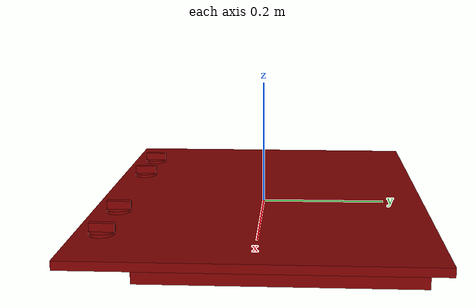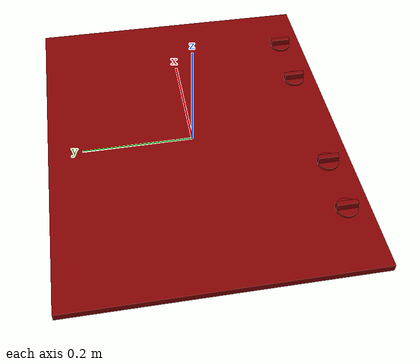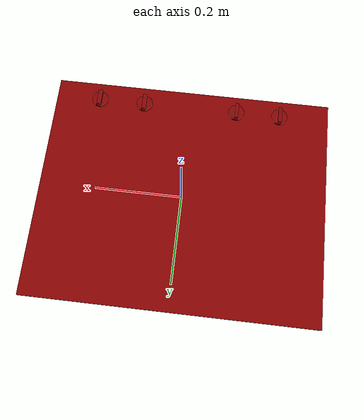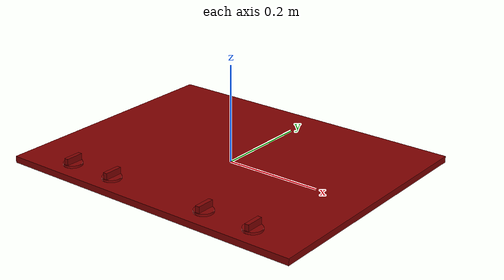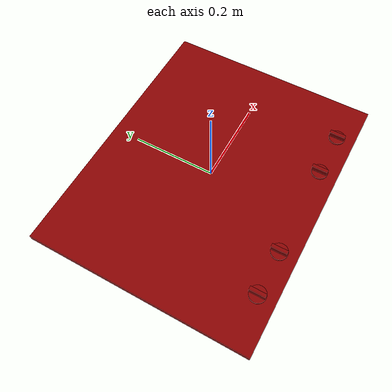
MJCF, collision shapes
<?xml version='1.0' encoding='UTF-8'?>
<mujoco model="model">
  <compiler angle="radian"/>
  <asset>
    <mesh file="visuals/knob_front_left.obj" name="knob_front_left_vis"/>
    <mesh file="visuals/knob_front_right.obj" name="knob_front_right_vis"/>
    <mesh file="visuals/knob_rear_left.obj" name="knob_rear_left_vis"/>
    <mesh file="visuals/knob_rear_right.obj" name="knob_rear_right_vis"/>
    <mesh file="visuals/Body001.obj" name="Body001_vis"/>
    <texture file="visuals/T_BC001.png" name="Body001_material" type="2d"/>
    <material name="Body001_material" rgba="1 1 1 1.0" texture="Body001_material" shininess="0.141421377658844" specular="0.3103448502657381"/>
    <texture file="visuals/T_BC001.png" name="knob_front_left_material" type="2d"/>
    <material name="knob_front_left_material" rgba="1 1 1 1.0" texture="knob_front_left_material" shininess="0.141421377658844" specular="0.3103448502657381"/>
    <texture file="visuals/T_BC001.png" name="knob_front_right_material" type="2d"/>
    <material name="knob_front_right_material" rgba="1 1 1 1.0" texture="knob_front_right_material" shininess="0.141421377658844" specular="0.3103448502657381"/>
    <texture file="visuals/T_BC001.png" name="knob_rear_left_material" type="2d"/>
    <material name="knob_rear_left_material" rgba="1 1 1 1.0" texture="knob_rear_left_material" shininess="0.141421377658844" specular="0.3103448502657381"/>
    <texture file="visuals/T_BC001.png" name="knob_rear_right_material" type="2d"/>
    <material name="knob_rear_right_material" rgba="1 1 1 1.0" texture="knob_rear_right_material" shininess="0.141421377658844" specular="0.3103448502657381"/>
  </asset>
  <default>
    <default class="visual">
      <geom conaffinity="0" contype="0" group="1" type="mesh"/>
    </default>
    <default class="collision">
      <geom group="0" rgba="0.5 0 0 0.5"/>
    </default>
    <default class="spawn">
      <geom group="0" rgba="1 1 1 0.5" contype="0" conaffinity="0"/>
      <site group="0" rgba="1 1 1 0.5"/>
    </default>
    <default class="region">
      <geom group="1" conaffinity="0" contype="0" rgba="0 1 0 0"/>
    </default>
  </default>
  <worldbody>
    <body>
      <body name="object">
        <site type="cylinder" rgba="0.5 0 0 0.5" size="0.05301237851381302 4.999999873689376e-05" pos="-0.188829 0.123446 0.010450" name="burner_on_rear_left"/>
        <site type="cylinder" rgba="0.5 0 0 0.5" size="0.07968807965517044 4.999999873689376e-05" pos="-0.187608 -0.052111 0.010592" name="burner_on_front_left"/>
        <site type="cylinder" rgba="0.5 0 0 0.5" size="0.053147222846746445 4.999999873689376e-05" pos="0.160513 -0.061958 0.010592" name="burner_on_front_right"/>
        <site type="cylinder" rgba="0.5 0 0 0.5" size="0.07860662043094635 5.0012000428978354e-05" pos="0.159917 0.124867 0.010592" name="burner_on_rear_right"/>
        <geom mesh="Body001_vis" type="mesh" solimp="0.998 0.998 0.001" solref="0.001 1" density="100" friction="0.95 0.3 0.1" class="visual" material="Body001_material"/>
        <geom class="collision" type="box" pos="-0.000000 -0.001173 0.005758" size="0.32879239320755005 0.26190751791000366 0.006636511068791151" quat="1.0 0.0 0.0 0.0"/>
        <geom class="collision" type="box" pos="-0.002134 0.034859 -0.014810" size="0.3005751371383667 0.20036616921424866 0.015968240797519684" quat="1.0 0.0 0.0 0.0"/>
        <body name="knob_front_left">
          <joint axis="0.0 0.0 1.0" pos="-0.211548 -0.221607 0.019029" limited="true" name="knob_front_left_joint" range="0.0 3.141592653589793" type="hinge" damping="0.05" armature="0.001"/>
          <geom mesh="knob_front_left_vis" type="mesh" solimp="0.998 0.998 0.001" solref="0.001 1" density="100" friction="0.95 0.3 0.1" class="visual" material="knob_front_left_material"/>
          <geom class="collision" type="box" pos="-0.211415 -0.220907 0.023740" size="0.004272299353033304 0.018434064462780952 0.007038237992674112" quat="1.0 0.0 0.0 0.0"/>
          <geom class="collision" type="cylinder" pos="-0.211400 -0.221823 0.015712" size="0.019143790006637573 0.0023300156462937593" quat="1.0 0.0 0.0 0.0"/>
        </body>
        <body name="knob_front_right">
          <joint axis="0.0 0.0 1.0" pos="0.222811 -0.221217 0.019029" limited="true" name="knob_front_right_joint" range="0.0 3.141592653589793" type="hinge" damping="0.05" armature="0.001"/>
          <geom mesh="knob_front_right_vis" type="mesh" solimp="0.998 0.998 0.001" solref="0.001 1" density="100" friction="0.95 0.3 0.1" class="visual" material="knob_front_right_material"/>
          <geom class="collision" type="cylinder" pos="0.223030 -0.221039 0.015712" size="0.019143790006637573 0.0023300156462937593" quat="1.0 0.0 0.0 0.0"/>
          <geom class="collision" type="box" pos="0.223015 -0.220123 0.023740" size="0.004272299353033304 0.018434064462780952 0.007038237992674112" quat="1.0 0.0 0.0 0.0"/>
        </body>
        <body name="knob_rear_left">
          <joint axis="0.0 0.0 1.0" pos="-0.108026 -0.221607 0.019029" limited="true" name="knob_rear_left_joint" range="0.0 3.141592653589793" type="hinge" damping="0.05" armature="0.001"/>
          <geom mesh="knob_rear_left_vis" type="mesh" solimp="0.998 0.998 0.001" solref="0.001 1" density="100" friction="0.95 0.3 0.1" class="visual" material="knob_rear_left_material"/>
          <geom class="collision" type="cylinder" pos="-0.107861 -0.221823 0.015712" size="0.019143790006637573 0.0023300156462937593" quat="1.0 0.0 0.0 0.0"/>
          <geom class="collision" type="box" pos="-0.107877 -0.220907 0.023740" size="0.004272299353033304 0.018434064462780952 0.007038237992674112" quat="1.0 0.0 0.0 0.0"/>
        </body>
        <body name="knob_rear_right">
          <joint axis="0.0 0.0 1.0" pos="0.114804 -0.220892 0.019029" limited="true" name="knob_rear_right_joint" range="0.0 3.141592653589793" type="hinge" damping="0.05" armature="0.001"/>
          <geom mesh="knob_rear_right_vis" type="mesh" solimp="0.998 0.998 0.001" solref="0.001 1" density="100" friction="0.95 0.3 0.1" class="visual" material="knob_rear_right_material"/>
          <geom class="collision" type="cylinder" pos="0.114670 -0.221039 0.015712" size="0.019143790006637573 0.0023300156462937593" quat="1.0 0.0 0.0 0.0"/>
          <geom class="collision" type="box" pos="0.114654 -0.220123 0.023740" size="0.004272299353033304 0.018434064462780952 0.007038237992674112" quat="1.0 0.0 0.0 0.0"/>
        </body>
        <geom class="region" name="reg_main" type="box" pos="-0.00042199999999997795 0.00024249999999997884 -0.00872" size="0.326075 0.2628375 0.020907000000000002"/>
      </body>
    </body>
  </worldbody>
  <actuator>
    <motor name="knob_front_left_joint_actuator" joint="knob_front_left_joint" gear="10"/>
    <motor name="knob_front_right_joint_actuator" joint="knob_front_right_joint" gear="10"/>
    <motor name="knob_rear_left_joint_actuator" joint="knob_rear_left_joint" gear="10"/>
    <motor name="knob_rear_right_joint_actuator" joint="knob_rear_right_joint" gear="10"/>
  </actuator>
</mujoco>
